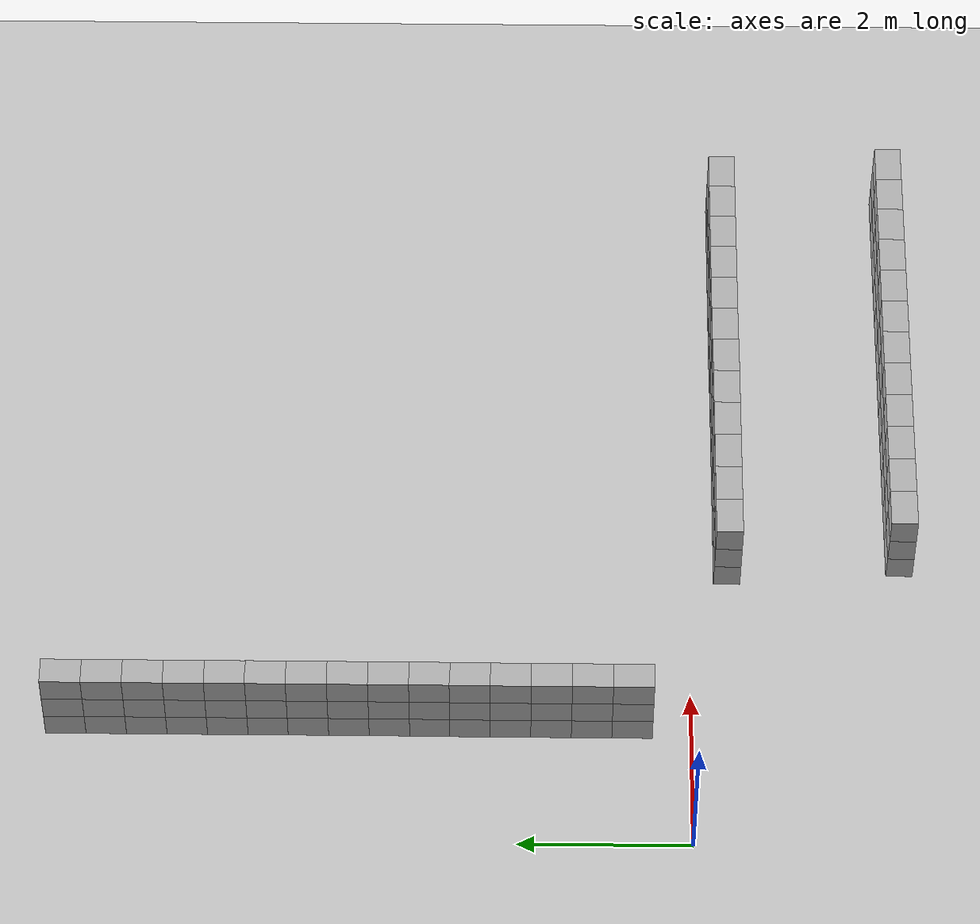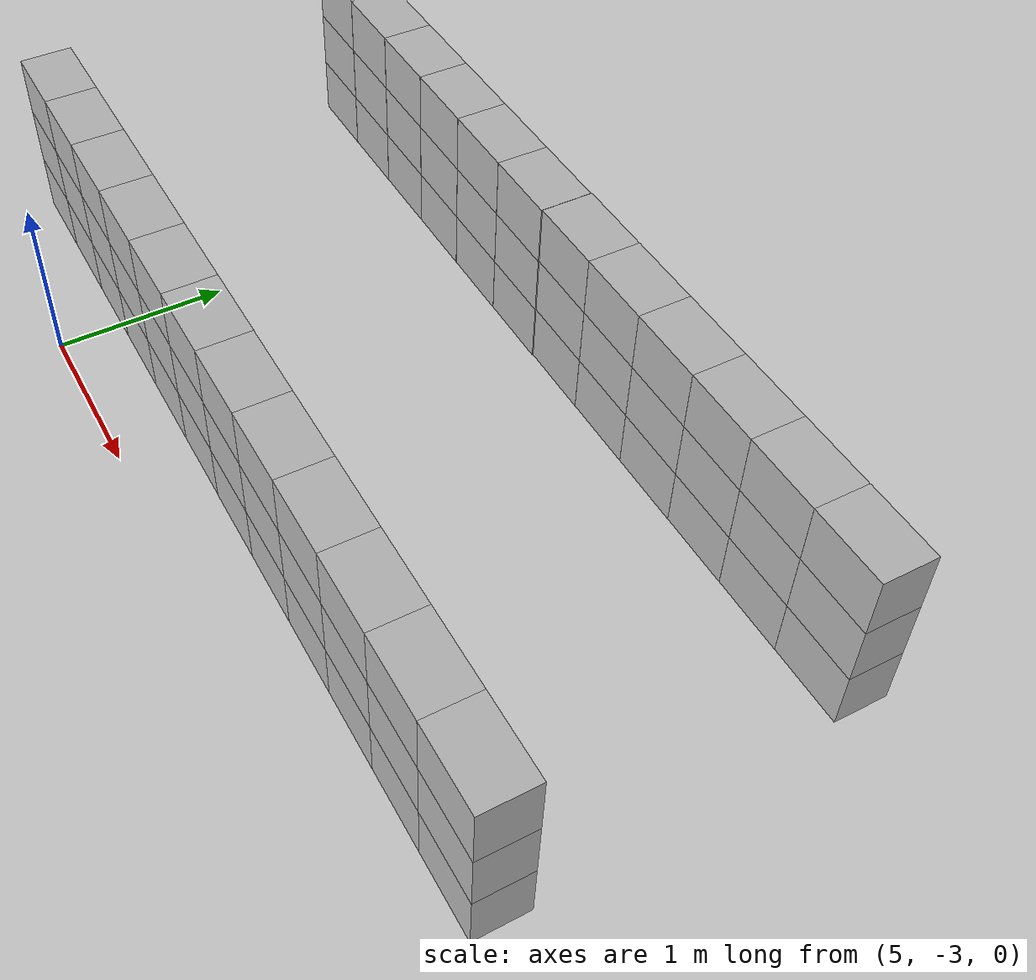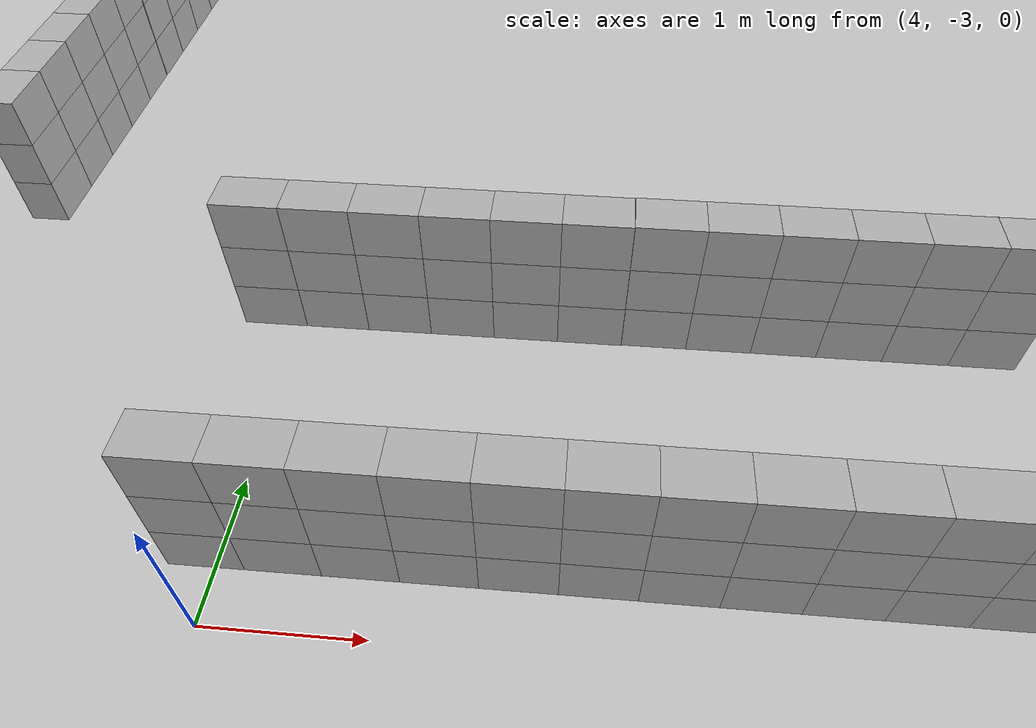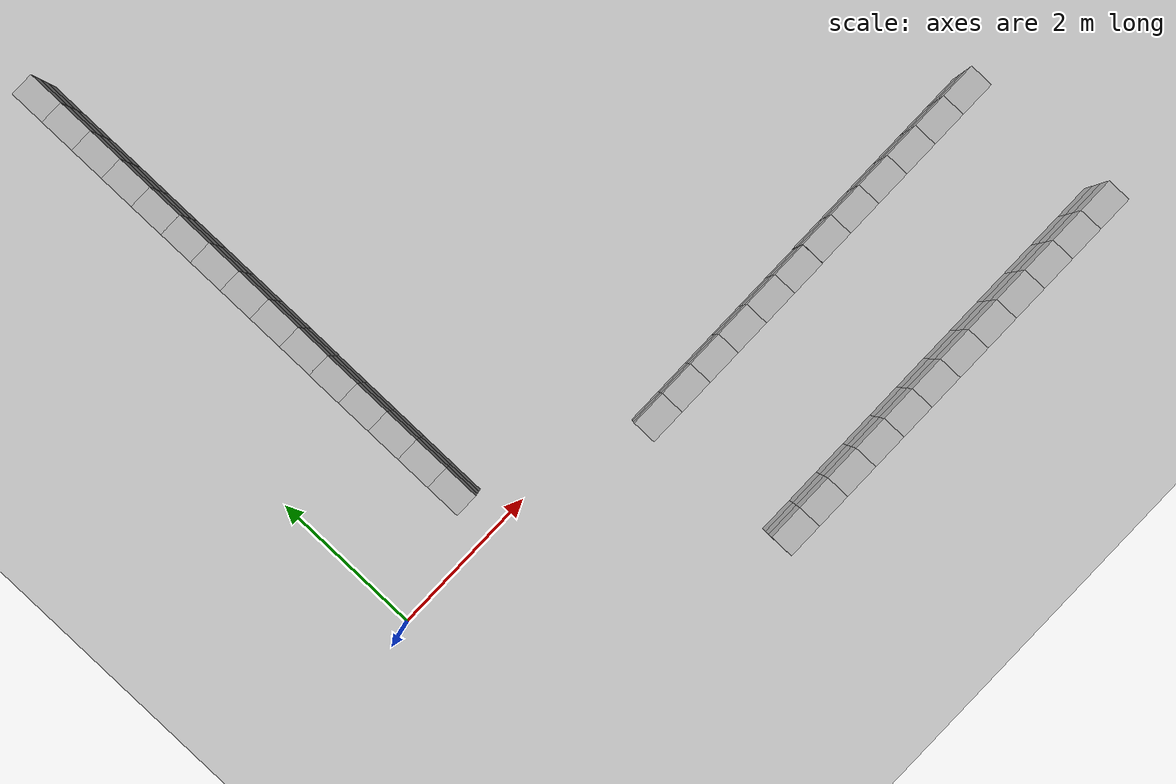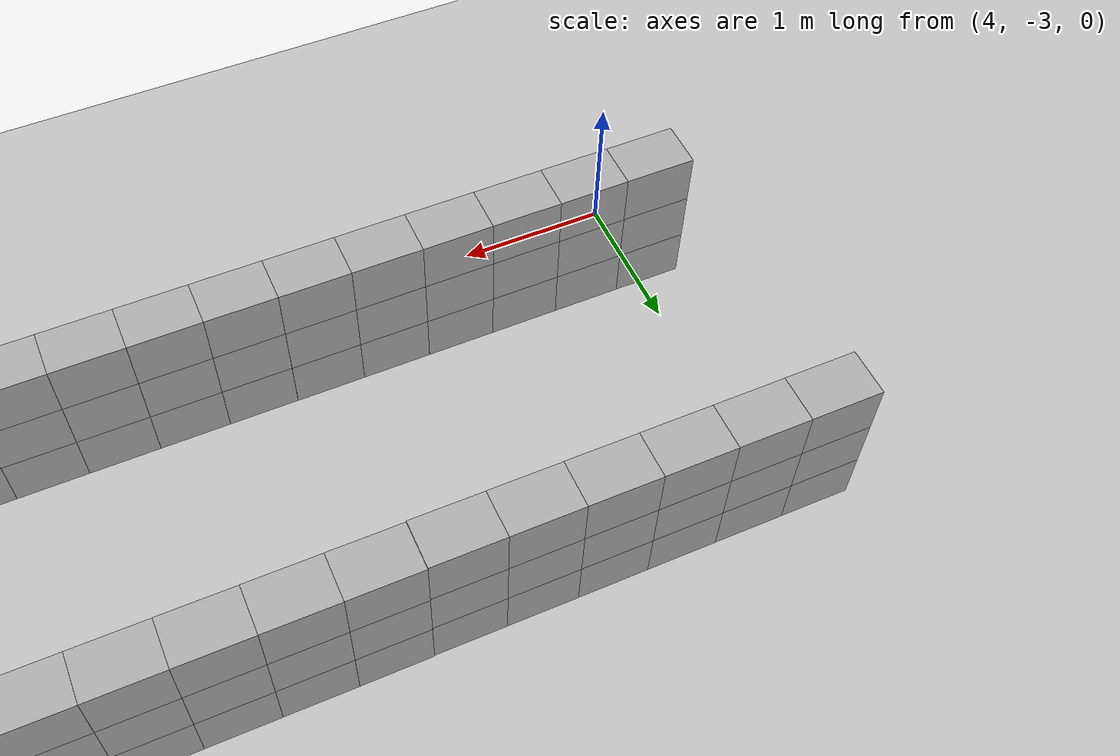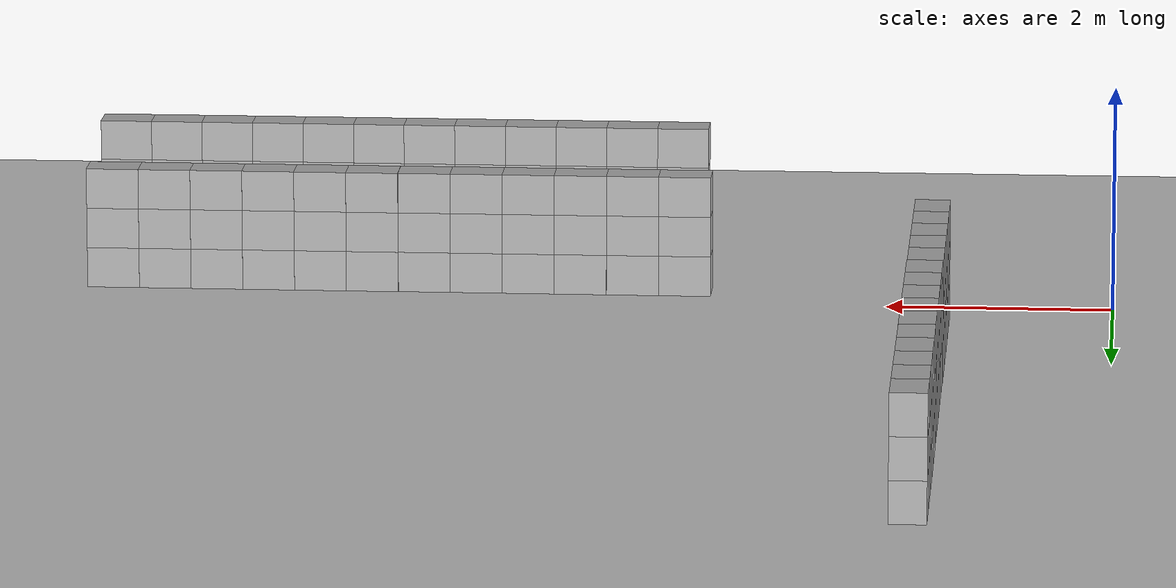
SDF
<sdf version="1.6">
 <world name="default">
  <model name="ground_plane">
   <static>1</static>
   <link name="link">
    <collision name="collision">
     <geometry><plane><normal>0 0 1</normal><size>100 100</size></plane></geometry>
     <surface>
      <contact><collide_bitmask>65535</collide_bitmask></contact>
      <friction><ode><mu>100</mu><mu2>50</mu2></ode></friction>
     </surface>
    </collision>
    <visual name="visual">
     <cast_shadows>0</cast_shadows>
     <geometry><plane><normal>0 0 1</normal><size>100 100</size></plane></geometry>
     <material>
      <script><uri>file://media/materials/scripts/gazebo.material</uri><name>Gazebo/Grey</name></script>
     </material>
    </visual>
   </link>
  </model>
  <model name="realistic_curve_side1_1">
   <pose>6.13372 -0.444168 0 0 -0 1.5708</pose>
   <static>1</static>
   <link name="link_0">
    <collision name="collision_0">
     <pose>0 0 0.18 0 -0 3.14</pose>
     <geometry><box><size>0.31 0.465 0.36</size></box></geometry>
    </collision>
    <visual name="visual_0">
     <pose>0 0 0.18 0 -0 3.14</pose>
     <geometry><mesh><uri>model://L-corridor_curve_real/meshes/exact_blue_circle_border.dae</uri></mesh></geometry>
    </visual>
   </link>
   <link name="link_1">
    <collision name="collision_1">
     <pose>0 0 0.54 0 -0 3.14</pose>
     <geometry><box><size>0.31 0.465 0.36</size></box></geometry>
    </collision>
    <visual name="visual_1">
     <pose>0 0 0.54 0 -0 3.14</pose>
     <geometry><mesh><uri>model://L-corridor_curve_real/meshes/exact_red_circle_border.dae</uri></mesh></geometry>
    </visual>
   </link>
   <link name="link_2">
    <collision name="collision_2">
     <pose>0 0 0.9 0 -0 3.14</pose>
     <geometry><box><size>0.31 0.465 0.36</size></box></geometry>
    </collision>
    <visual name="visual_2">
     <pose>0 0 0.9 0 -0 3.14</pose>
     <geometry>
      <mesh><uri>model://L-corridor_curve_real/meshes/exact_green_circle_border.dae</uri></mesh>
     </geometry>
    </visual>
   </link>
   <link name="link_3">
    <collision name="collision_3">
     <pose>0 0.465 0.54 0 -0 3.14</pose>
     <geometry><box><size>0.31 0.465 0.36</size></box></geometry>
    </collision>
    <visual name="visual_3">
     <pose>0 0.465 0.54 0 -0 3.14</pose>
     <geometry><mesh><uri>model://L-corridor_curve_real/meshes/exact_blue_circle_border.dae</uri></mesh></geometry>
    </visual>
   </link>
   <link name="link_4">
    <collision name="collision_4">
     <pose>0 0.465 0.9 0 -0 3.14</pose>
     <geometry><box><size>0.31 0.465 0.36</size></box></geometry>
    </collision>
    <visual name="visual_4">
     <pose>0 0.465 0.9 0 -0 3.14</pose>
     <geometry><mesh><uri>model://L-corridor_curve_real/meshes/exact_red_circle_border.dae</uri></mesh></geometry>
    </visual>
   </link>
   <link name="link_5">
    <collision name="collision_5">
     <pose>0 0.465 0.18 0 -0 3.14</pose>
     <geometry><box><size>0.31 0.465 0.36</size></box></geometry>
    </collision>
    <visual name="visual_5">
     <pose>0 0.465 0.18 0 -0 3.14</pose>
     <geometry>
      <mesh><uri>model://L-corridor_curve_real/meshes/exact_green_circle_border.dae</uri></mesh>
     </geometry>
    </visual>
   </link>
   <link name="link_6">
    <collision name="collision_6">
     <pose>0 0.93 0.9 0 -0 3.14</pose>
     <geometry><box><size>0.31 0.465 0.36</size></box></geometry>
    </collision>
    <visual name="visual_6">
     <pose>0 0.93 0.9 0 -0 3.14</pose>
     <geometry><mesh><uri>model://L-corridor_curve_real/meshes/exact_blue_circle_border.dae</uri></mesh></geometry>
    </visual>
   </link>
   <link name="link_7">
    <collision name="collision_7">
     <pose>0 0.93 0.18 0 -0 3.14</pose>
     <geometry><box><size>0.31 0.465 0.36</size></box></geometry>
    </collision>
    <visual name="visual_7">
     <pose>0 0.93 0.18 0 -0 3.14</pose>
     <geometry><mesh><uri>model://L-corridor_curve_real/meshes/exact_red_circle_border.dae</uri></mesh></geometry>
    </visual>
   </link>
   <link name="link_8">
    <collision name="collision_8">
     <pose>0 0.93 0.54 0 -0 3.14</pose>
     <geometry><box><size>0.31 0.465 0.36</size></box></geometry>
    </collision>
    <visual name="visual_8">
     <pose>0 0.93 0.54 0 -0 3.14</pose>
     <geometry>
      <mesh><uri>model://L-corridor_curve_real/meshes/exact_green_circle_border.dae</uri></mesh>
     </geometry>
    </visual>
   </link>
   <link name="link_9">
    <collision name="collision_9">
     <pose>0 1.395 0.18 0 -0 3.14</pose>
     <geometry><box><size>0.31 0.465 0.36</size></box></geometry>
    </collision>
    <visual name="visual_9">
     <pose>0 1.395 0.18 0 -0 3.14</pose>
     <geometry><mesh><uri>model://L-corridor_curve_real/meshes/exact_blue_circle_border.dae</uri></mesh></geometry>
    </visual>
   </link>
   <link name="link_10">
    <collision name="collision_10">
     <pose>0 1.395 0.54 0 -0 3.14</pose>
     <geometry><box><size>0.31 0.465 0.36</size></box></geometry>
    </collision>
    <visual name="visual_10">
     <pose>0 1.395 0.54 0 -0 3.14</pose>
     <geometry><mesh><uri>model://L-corridor_curve_real/meshes/exact_red_circle_border.dae</uri></mesh></geometry>
    </visual>
   </link>
   <link name="link_11">
    <collision name="collision_11">
     <pose>0 1.395 0.9 0 -0 3.14</pose>
     <geometry><box><size>0.31 0.465 0.36</size></box></geometry>
    </collision>
    <visual name="visual_11">
     <pose>0 1.395 0.9 0 -0 3.14</pose>
     <geometry>
      <mesh><uri>model://L-corridor_curve_real/meshes/exact_green_circle_border.dae</uri></mesh>
     </geometry>
    </visual>
   </link>
   <link name="link_12">
    <collision name="collision_12">
     <pose>0 1.86 0.54 0 -0 3.14</pose>
     <geometry><box><size>0.31 0.465 0.36</size></box></geometry>
    </collision>
    <visual name="visual_12">
     <pose>0 1.86 0.54 0 -0 3.14</pose>
     <geometry><mesh><uri>model://L-corridor_curve_real/meshes/exact_blue_circle_border.dae</uri></mesh></geometry>
    </visual>
   </link>
   <link name="link_13">
    <collision name="collision_13">
     <pose>0 1.86 0.9 0 -0 3.14</pose>
     <geometry><box><size>0.31 0.465 0.36</size></box></geometry>
    </collision>
    <visual name="visual_13">
     <pose>0 1.86 0.9 0 -0 3.14</pose>
     <geometry><mesh><uri>model://L-corridor_curve_real/meshes/exact_red_circle_border.dae</uri></mesh></geometry>
    </visual>
   </link>
   <link name="link_14">
    <collision name="collision_14">
     <pose>0 1.86 0.18 0 -0 3.14</pose>
     <geometry><box><size>0.31 0.465 0.36</size></box></geometry>
    </collision>
    <visual name="visual_14">
     <pose>0 1.86 0.18 0 -0 3.14</pose>
     <geometry>
      <mesh><uri>model://L-corridor_curve_real/meshes/exact_green_circle_border.dae</uri></mesh>
     </geometry>
    </visual>
   </link>
   <link name="link_15">
    <collision name="collision_15">
     <pose>0 2.325 0 3.14159 0.001593 3.14159</pose>
     <geometry><box><size>0.31 0.465 0.36</size></box></geometry>
    </collision>
    <visual name="visual_15">
     <pose>0 2.325 0.9 0 -0 3.14</pose>
     <geometry><mesh><uri>model://L-corridor_curve_real/meshes/exact_blue_circle_border.dae</uri></mesh></geometry>
    </visual>
   </link>
   <link name="link_16">
    <collision name="collision_16">
     <pose>0 2.325 0.18 0 -0 3.14</pose>
     <geometry><box><size>0.31 0.465 0.36</size></box></geometry>
    </collision>
    <visual name="visual_16">
     <pose>0 2.325 0.18 0 -0 3.14</pose>
     <geometry><mesh><uri>model://L-corridor_curve_real/meshes/exact_red_circle_border.dae</uri></mesh></geometry>
    </visual>
   </link>
   <link name="link_17">
    <collision name="collision_17">
     <pose>0 2.325 0.54 0 -0 3.14</pose>
     <geometry><box><size>0.31 0.465 0.36</size></box></geometry>
    </collision>
    <visual name="visual_17">
     <pose>0 2.325 0.54 0 -0 3.14</pose>
     <geometry>
      <mesh><uri>model://L-corridor_curve_real/meshes/exact_green_circle_border.dae</uri></mesh>
     </geometry>
    </visual>
   </link>
  </model>
  <model name="realistic_curve_side1_1_0">
   <pose>8.92526 -0.439347 0 0 -0 1.5708</pose>
   <static>1</static>
   <link name="link_0">
    <collision name="collision_0">
     <pose>0 0 0.18 0 -0 3.14</pose>
     <geometry><box><size>0.31 0.465 0.36</size></box></geometry>
    </collision>
    <visual name="visual_0">
     <pose>0 0 0.18 0 -0 3.14</pose>
     <geometry><mesh><uri>model://L-corridor_curve_real/meshes/exact_blue_circle_border.dae</uri></mesh></geometry>
    </visual>
   </link>
   <link name="link_1">
    <collision name="collision_1">
     <pose>0 0 0.54 0 -0 3.14</pose>
     <geometry><box><size>0.31 0.465 0.36</size></box></geometry>
    </collision>
    <visual name="visual_1">
     <pose>0 0 0.54 0 -0 3.14</pose>
     <geometry><mesh><uri>model://L-corridor_curve_real/meshes/exact_red_circle_border.dae</uri></mesh></geometry>
    </visual>
   </link>
   <link name="link_2">
    <collision name="collision_2">
     <pose>0 0 0.9 0 -0 3.14</pose>
     <geometry><box><size>0.31 0.465 0.36</size></box></geometry>
    </collision>
    <visual name="visual_2">
     <pose>0 0 0.9 0 -0 3.14</pose>
     <geometry>
      <mesh><uri>model://L-corridor_curve_real/meshes/exact_green_circle_border.dae</uri></mesh>
     </geometry>
    </visual>
   </link>
   <link name="link_3">
    <collision name="collision_3">
     <pose>0 0.465 0.54 0 -0 3.14</pose>
     <geometry><box><size>0.31 0.465 0.36</size></box></geometry>
    </collision>
    <visual name="visual_3">
     <pose>0 0.465 0.54 0 -0 3.14</pose>
     <geometry><mesh><uri>model://L-corridor_curve_real/meshes/exact_blue_circle_border.dae</uri></mesh></geometry>
    </visual>
   </link>
   <link name="link_4">
    <collision name="collision_4">
     <pose>0 0.465 0.9 0 -0 3.14</pose>
     <geometry><box><size>0.31 0.465 0.36</size></box></geometry>
    </collision>
    <visual name="visual_4">
     <pose>0 0.465 0.9 0 -0 3.14</pose>
     <geometry><mesh><uri>model://L-corridor_curve_real/meshes/exact_red_circle_border.dae</uri></mesh></geometry>
    </visual>
   </link>
   <link name="link_5">
    <collision name="collision_5">
     <pose>0 0.465 0.18 0 -0 3.14</pose>
     <geometry><box><size>0.31 0.465 0.36</size></box></geometry>
    </collision>
    <visual name="visual_5">
     <pose>0 0.465 0.18 0 -0 3.14</pose>
     <geometry>
      <mesh><uri>model://L-corridor_curve_real/meshes/exact_green_circle_border.dae</uri></mesh>
     </geometry>
    </visual>
   </link>
   <link name="link_6">
    <collision name="collision_6">
     <pose>0 0.93 0.9 0 -0 3.14</pose>
     <geometry><box><size>0.31 0.465 0.36</size></box></geometry>
    </collision>
    <visual name="visual_6">
     <pose>0 0.93 0.9 0 -0 3.14</pose>
     <geometry><mesh><uri>model://L-corridor_curve_real/meshes/exact_blue_circle_border.dae</uri></mesh></geometry>
    </visual>
   </link>
   <link name="link_7">
    <collision name="collision_7">
     <pose>0 0.93 0.18 0 -0 3.14</pose>
     <geometry><box><size>0.31 0.465 0.36</size></box></geometry>
    </collision>
    <visual name="visual_7">
     <pose>0 0.93 0.18 0 -0 3.14</pose>
     <geometry><mesh><uri>model://L-corridor_curve_real/meshes/exact_red_circle_border.dae</uri></mesh></geometry>
    </visual>
   </link>
   <link name="link_8">
    <collision name="collision_8">
     <pose>0 0.93 0.54 0 -0 3.14</pose>
     <geometry><box><size>0.31 0.465 0.36</size></box></geometry>
    </collision>
    <visual name="visual_8">
     <pose>0 0.93 0.54 0 -0 3.14</pose>
     <geometry>
      <mesh><uri>model://L-corridor_curve_real/meshes/exact_green_circle_border.dae</uri></mesh>
     </geometry>
    </visual>
   </link>
   <link name="link_9">
    <collision name="collision_9">
     <pose>0 1.395 0.18 0 -0 3.14</pose>
     <geometry><box><size>0.31 0.465 0.36</size></box></geometry>
    </collision>
    <visual name="visual_9">
     <pose>0 1.395 0.18 0 -0 3.14</pose>
     <geometry><mesh><uri>model://L-corridor_curve_real/meshes/exact_blue_circle_border.dae</uri></mesh></geometry>
    </visual>
   </link>
   <link name="link_10">
    <collision name="collision_10">
     <pose>0 1.395 0.54 0 -0 3.14</pose>
     <geometry><box><size>0.31 0.465 0.36</size></box></geometry>
    </collision>
    <visual name="visual_10">
     <pose>0 1.395 0.54 0 -0 3.14</pose>
     <geometry><mesh><uri>model://L-corridor_curve_real/meshes/exact_red_circle_border.dae</uri></mesh></geometry>
    </visual>
   </link>
   <link name="link_11">
    <collision name="collision_11">
     <pose>0 1.395 0.9 0 -0 3.14</pose>
     <geometry><box><size>0.31 0.465 0.36</size></box></geometry>
    </collision>
    <visual name="visual_11">
     <pose>0 1.395 0.9 0 -0 3.14</pose>
     <geometry>
      <mesh><uri>model://L-corridor_curve_real/meshes/exact_green_circle_border.dae</uri></mesh>
     </geometry>
    </visual>
   </link>
   <link name="link_12">
    <collision name="collision_12">
     <pose>0 1.86 0.54 0 -0 3.14</pose>
     <geometry><box><size>0.31 0.465 0.36</size></box></geometry>
    </collision>
    <visual name="visual_12">
     <pose>0 1.86 0.54 0 -0 3.14</pose>
     <geometry><mesh><uri>model://L-corridor_curve_real/meshes/exact_blue_circle_border.dae</uri></mesh></geometry>
    </visual>
   </link>
   <link name="link_13">
    <collision name="collision_13">
     <pose>0 1.86 0.9 0 -0 3.14</pose>
     <geometry><box><size>0.31 0.465 0.36</size></box></geometry>
    </collision>
    <visual name="visual_13">
     <pose>0 1.86 0.9 0 -0 3.14</pose>
     <geometry><mesh><uri>model://L-corridor_curve_real/meshes/exact_red_circle_border.dae</uri></mesh></geometry>
    </visual>
   </link>
   <link name="link_14">
    <collision name="collision_14">
     <pose>0 1.86 0.18 0 -0 3.14</pose>
     <geometry><box><size>0.31 0.465 0.36</size></box></geometry>
    </collision>
    <visual name="visual_14">
     <pose>0 1.86 0.18 0 -0 3.14</pose>
     <geometry>
      <mesh><uri>model://L-corridor_curve_real/meshes/exact_green_circle_border.dae</uri></mesh>
     </geometry>
    </visual>
   </link>
   <link name="link_15">
    <collision name="collision_15">
     <pose>0 2.325 0 3.14159 0.001593 3.14159</pose>
     <geometry><box><size>0.31 0.465 0.36</size></box></geometry>
    </collision>
    <visual name="visual_15">
     <pose>0 2.325 0.9 0 -0 3.14</pose>
     <geometry><mesh><uri>model://L-corridor_curve_real/meshes/exact_blue_circle_border.dae</uri></mesh></geometry>
    </visual>
   </link>
   <link name="link_16">
    <collision name="collision_16">
     <pose>0 2.325 0.18 0 -0 3.14</pose>
     <geometry><box><size>0.31 0.465 0.36</size></box></geometry>
    </collision>
    <visual name="visual_16">
     <pose>0 2.325 0.18 0 -0 3.14</pose>
     <geometry><mesh><uri>model://L-corridor_curve_real/meshes/exact_red_circle_border.dae</uri></mesh></geometry>
    </visual>
   </link>
   <link name="link_17">
    <collision name="collision_17">
     <pose>0 2.325 0.54 0 -0 3.14</pose>
     <geometry><box><size>0.31 0.465 0.36</size></box></geometry>
    </collision>
    <visual name="visual_17">
     <pose>0 2.325 0.54 0 -0 3.14</pose>
     <geometry>
      <mesh><uri>model://L-corridor_curve_real/meshes/exact_green_circle_border.dae</uri></mesh>
     </geometry>
    </visual>
   </link>
  </model>
  <model name="realistic_curve_side2_1_0">
   <pose>6.26584 -1.16881 0 0 -0 1.5708</pose>
   <static>1</static>
   <link name="link_0_0">
    <collision name="collision_0_0">
     <pose>-1.3 0 0.18 0 -0 0</pose>
     <geometry><box><size>0.31 0.465 0.36</size></box></geometry>
    </collision>
    <visual name="visual_0_0">
     <pose>-1.3 0 0.18 0 -0 0</pose>
     <geometry><mesh><uri>model://L-corridor_curve_real/meshes/exact_blue_circle_border.dae</uri></mesh></geometry>
    </visual>
   </link>
   <link name="link_1_0">
    <collision name="collision_1_0">
     <pose>-1.3 0.54 0 0 -0 0</pose>
     <geometry><box><size>0.31 0.465 0.36</size></box></geometry>
    </collision>
    <visual name="visual_1_0">
     <pose>-1.3 0 0.54 0 -0 0</pose>
     <geometry><mesh><uri>model://L-corridor_curve_real/meshes/exact_red_circle_border.dae</uri></mesh></geometry>
    </visual>
   </link>
   <link name="link_2_0">
    <collision name="collision_2_0">
     <pose>-1.3 0 0.9 0 -0 0</pose>
     <geometry><box><size>0.31 0.465 0.36</size></box></geometry>
    </collision>
    <visual name="visual_2_0">
     <pose>-1.3 0 0.9 0 -0 0</pose>
     <geometry>
      <mesh><uri>model://L-corridor_curve_real/meshes/exact_green_circle_border.dae</uri></mesh>
     </geometry>
    </visual>
   </link>
   <link name="link_3_0">
    <collision name="collision_3_0">
     <pose>-1.3 0.465 0.54 0 -0 0</pose>
     <geometry><box><size>0.31 0.465 0.36</size></box></geometry>
    </collision>
    <visual name="visual_3_0">
     <pose>-1.3 0.465 0.54 0 -0 0</pose>
     <geometry><mesh><uri>model://L-corridor_curve_real/meshes/exact_blue_circle_border.dae</uri></mesh></geometry>
    </visual>
   </link>
   <link name="link_4_0">
    <collision name="collision_4_0">
     <pose>-1.3 0.465 0.9 0 -0 0</pose>
     <geometry><box><size>0.31 0.465 0.36</size></box></geometry>
    </collision>
    <visual name="visual_4_0">
     <pose>-1.3 0.465 0.9 0 -0 0</pose>
     <geometry><mesh><uri>model://L-corridor_curve_real/meshes/exact_red_circle_border.dae</uri></mesh></geometry>
    </visual>
   </link>
   <link name="link_5_0">
    <collision name="collision_5_0">
     <pose>-1.3 0.465 0.18 0 -0 0</pose>
     <geometry><box><size>0.31 0.465 0.36</size></box></geometry>
    </collision>
    <visual name="visual_5_0">
     <pose>-1.3 0.465 0.18 0 -0 0</pose>
     <geometry>
      <mesh><uri>model://L-corridor_curve_real/meshes/exact_green_circle_border.dae</uri></mesh>
     </geometry>
    </visual>
   </link>
   <link name="link_6_0">
    <collision name="collision_6_0">
     <pose>-1.3 0.93 0.9 0 -0 0</pose>
     <geometry><box><size>0.31 0.465 0.36</size></box></geometry>
    </collision>
    <visual name="visual_6_0">
     <pose>-1.3 0.93 0.9 0 -0 0</pose>
     <geometry><mesh><uri>model://L-corridor_curve_real/meshes/exact_blue_circle_border.dae</uri></mesh></geometry>
    </visual>
   </link>
   <link name="link_7_0">
    <collision name="collision_7_0">
     <pose>-1.3 0.93 0.18 0 -0 0</pose>
     <geometry><box><size>0.31 0.465 0.36</size></box></geometry>
    </collision>
    <visual name="visual_7_0">
     <pose>-1.3 0.93 0.18 0 -0 0</pose>
     <geometry><mesh><uri>model://L-corridor_curve_real/meshes/exact_red_circle_border.dae</uri></mesh></geometry>
    </visual>
   </link>
   <link name="link_8_0">
    <collision name="collision_8_0">
     <pose>-1.3 0.93 0.54 0 -0 0</pose>
     <geometry><box><size>0.31 0.465 0.36</size></box></geometry>
    </collision>
    <visual name="visual_8_0">
     <pose>-1.3 0.93 0.54 0 -0 0</pose>
     <geometry>
      <mesh><uri>model://L-corridor_curve_real/meshes/exact_green_circle_border.dae</uri></mesh>
     </geometry>
    </visual>
   </link>
   <link name="link_9_0">
    <collision name="collision_9_0">
     <pose>-1.3 1.395 0.18 0 -0 0</pose>
     <geometry><box><size>0.31 0.465 0.36</size></box></geometry>
    </collision>
    <visual name="visual_9_0">
     <pose>-1.3 1.395 0.18 0 -0 0</pose>
     <geometry><mesh><uri>model://L-corridor_curve_real/meshes/exact_blue_circle_border.dae</uri></mesh></geometry>
    </visual>
   </link>
   <link name="link_10_0">
    <collision name="collision_10_0">
     <pose>-1.3 1.395 0.54 0 -0 0</pose>
     <geometry><box><size>0.31 0.465 0.36</size></box></geometry>
    </collision>
    <visual name="visual_10_0">
     <pose>-1.3 1.395 0.54 0 -0 0</pose>
     <geometry><mesh><uri>model://L-corridor_curve_real/meshes/exact_red_circle_border.dae</uri></mesh></geometry>
    </visual>
   </link>
   <link name="link_11_0">
    <collision name="collision_11_0">
     <pose>-1.3 1.395 0.9 0 -0 0</pose>
     <geometry><box><size>0.31 0.465 0.36</size></box></geometry>
    </collision>
    <visual name="visual_11_0">
     <pose>-1.3 1.395 0.9 0 -0 0</pose>
     <geometry>
      <mesh><uri>model://L-corridor_curve_real/meshes/exact_green_circle_border.dae</uri></mesh>
     </geometry>
    </visual>
   </link>
   <link name="link_12_0">
    <collision name="collision_12_0">
     <pose>-1.3 1.86 0.54 0 -0 0</pose>
     <geometry><box><size>0.31 0.465 0.36</size></box></geometry>
    </collision>
    <visual name="visual_12_0">
     <pose>-1.3 1.86 0.54 0 -0 0</pose>
     <geometry><mesh><uri>model://L-corridor_curve_real/meshes/exact_blue_circle_border.dae</uri></mesh></geometry>
    </visual>
   </link>
   <link name="link_13_0">
    <collision name="collision_13_0">
     <pose>-1.3 1.86 0.9 0 -0 0</pose>
     <geometry><box><size>0.31 0.465 0.36</size></box></geometry>
    </collision>
    <visual name="visual_13_0">
     <pose>-1.3 1.86 0.9 0 -0 0</pose>
     <geometry><mesh><uri>model://L-corridor_curve_real/meshes/exact_red_circle_border.dae</uri></mesh></geometry>
    </visual>
   </link>
   <link name="link_14_0">
    <collision name="collision_14_0">
     <pose>-1.3 1.86 0.18 0 -0 0</pose>
     <geometry><box><size>0.31 0.465 0.36</size></box></geometry>
    </collision>
    <visual name="visual_14_0">
     <pose>-1.3 1.86 0.18 0 -0 0</pose>
     <geometry>
      <mesh><uri>model://L-corridor_curve_real/meshes/exact_green_circle_border.dae</uri></mesh>
     </geometry>
    </visual>
   </link>
   <link name="link_15_0">
    <collision name="collision_15_0">
     <pose>-1.3 2.325 0 0 -0 0</pose>
     <geometry><box><size>0.31 0.465 0.36</size></box></geometry>
    </collision>
    <visual name="visual_15_0">
     <pose>-1.3 2.325 0.9 0 -0 0</pose>
     <geometry><mesh><uri>model://L-corridor_curve_real/meshes/exact_blue_circle_border.dae</uri></mesh></geometry>
    </visual>
   </link>
   <link name="link_16_0">
    <collision name="collision_16_0">
     <pose>-1.3 2.325 0.18 0 -0 0</pose>
     <geometry><box><size>0.31 0.465 0.36</size></box></geometry>
    </collision>
    <visual name="visual_16_0">
     <pose>-1.3 2.325 0.18 0 -0 0</pose>
     <geometry><mesh><uri>model://L-corridor_curve_real/meshes/exact_red_circle_border.dae</uri></mesh></geometry>
    </visual>
   </link>
   <link name="link_17_0">
    <collision name="collision_17_0">
     <pose>-1.3 2.325 0.54 0 -0 0</pose>
     <geometry><box><size>0.31 0.465 0.36</size></box></geometry>
    </collision>
    <visual name="visual_17_0">
     <pose>-1.3 2.325 0.54 0 -0 0</pose>
     <geometry>
      <mesh><uri>model://L-corridor_curve_real/meshes/exact_green_circle_border.dae</uri></mesh>
     </geometry>
    </visual>
   </link>
  </model>
  <model name="realistic_curve_side2_1_1">
   <pose>9.05342 -1.16989 0 0 -0 1.5708</pose>
   <static>1</static>
   <link name="link_0_0">
    <collision name="collision_0_0">
     <pose>-1.3 0 0.18 0 -0 0</pose>
     <geometry><box><size>0.31 0.465 0.36</size></box></geometry>
    </collision>
    <visual name="visual_0_0">
     <pose>-1.3 0 0.18 0 -0 0</pose>
     <geometry><mesh><uri>model://L-corridor_curve_real/meshes/exact_blue_circle_border.dae</uri></mesh></geometry>
    </visual>
   </link>
   <link name="link_1_0">
    <collision name="collision_1_0">
     <pose>-1.3 0.54 0 0 -0 0</pose>
     <geometry><box><size>0.31 0.465 0.36</size></box></geometry>
    </collision>
    <visual name="visual_1_0">
     <pose>-1.3 0 0.54 0 -0 0</pose>
     <geometry><mesh><uri>model://L-corridor_curve_real/meshes/exact_red_circle_border.dae</uri></mesh></geometry>
    </visual>
   </link>
   <link name="link_2_0">
    <collision name="collision_2_0">
     <pose>-1.3 0 0.9 0 -0 0</pose>
     <geometry><box><size>0.31 0.465 0.36</size></box></geometry>
    </collision>
    <visual name="visual_2_0">
     <pose>-1.3 0 0.9 0 -0 0</pose>
     <geometry>
      <mesh><uri>model://L-corridor_curve_real/meshes/exact_green_circle_border.dae</uri></mesh>
     </geometry>
    </visual>
   </link>
   <link name="link_3_0">
    <collision name="collision_3_0">
     <pose>-1.3 0.465 0.54 0 -0 0</pose>
     <geometry><box><size>0.31 0.465 0.36</size></box></geometry>
    </collision>
    <visual name="visual_3_0">
     <pose>-1.3 0.465 0.54 0 -0 0</pose>
     <geometry><mesh><uri>model://L-corridor_curve_real/meshes/exact_blue_circle_border.dae</uri></mesh></geometry>
    </visual>
   </link>
   <link name="link_4_0">
    <collision name="collision_4_0">
     <pose>-1.3 0.465 0.9 0 -0 0</pose>
     <geometry><box><size>0.31 0.465 0.36</size></box></geometry>
    </collision>
    <visual name="visual_4_0">
     <pose>-1.3 0.465 0.9 0 -0 0</pose>
     <geometry><mesh><uri>model://L-corridor_curve_real/meshes/exact_red_circle_border.dae</uri></mesh></geometry>
    </visual>
   </link>
   <link name="link_5_0">
    <collision name="collision_5_0">
     <pose>-1.3 0.465 0.18 0 -0 0</pose>
     <geometry><box><size>0.31 0.465 0.36</size></box></geometry>
    </collision>
    <visual name="visual_5_0">
     <pose>-1.3 0.465 0.18 0 -0 0</pose>
     <geometry>
      <mesh><uri>model://L-corridor_curve_real/meshes/exact_green_circle_border.dae</uri></mesh>
     </geometry>
    </visual>
   </link>
   <link name="link_6_0">
    <collision name="collision_6_0">
     <pose>-1.3 0.93 0.9 0 -0 0</pose>
     <geometry><box><size>0.31 0.465 0.36</size></box></geometry>
    </collision>
    <visual name="visual_6_0">
     <pose>-1.3 0.93 0.9 0 -0 0</pose>
     <geometry><mesh><uri>model://L-corridor_curve_real/meshes/exact_blue_circle_border.dae</uri></mesh></geometry>
    </visual>
   </link>
   <link name="link_7_0">
    <collision name="collision_7_0">
     <pose>-1.3 0.93 0.18 0 -0 0</pose>
     <geometry><box><size>0.31 0.465 0.36</size></box></geometry>
    </collision>
    <visual name="visual_7_0">
     <pose>-1.3 0.93 0.18 0 -0 0</pose>
     <geometry><mesh><uri>model://L-corridor_curve_real/meshes/exact_red_circle_border.dae</uri></mesh></geometry>
    </visual>
   </link>
   <link name="link_8_0">
    <collision name="collision_8_0">
     <pose>-1.3 0.93 0.54 0 -0 0</pose>
     <geometry><box><size>0.31 0.465 0.36</size></box></geometry>
    </collision>
    <visual name="visual_8_0">
     <pose>-1.3 0.93 0.54 0 -0 0</pose>
     <geometry>
      <mesh><uri>model://L-corridor_curve_real/meshes/exact_green_circle_border.dae</uri></mesh>
     </geometry>
    </visual>
   </link>
   <link name="link_9_0">
    <collision name="collision_9_0">
     <pose>-1.3 1.395 0.18 0 -0 0</pose>
     <geometry><box><size>0.31 0.465 0.36</size></box></geometry>
    </collision>
    <visual name="visual_9_0">
     <pose>-1.3 1.395 0.18 0 -0 0</pose>
     <geometry><mesh><uri>model://L-corridor_curve_real/meshes/exact_blue_circle_border.dae</uri></mesh></geometry>
    </visual>
   </link>
   <link name="link_10_0">
    <collision name="collision_10_0">
     <pose>-1.3 1.395 0.54 0 -0 0</pose>
     <geometry><box><size>0.31 0.465 0.36</size></box></geometry>
    </collision>
    <visual name="visual_10_0">
     <pose>-1.3 1.395 0.54 0 -0 0</pose>
     <geometry><mesh><uri>model://L-corridor_curve_real/meshes/exact_red_circle_border.dae</uri></mesh></geometry>
    </visual>
   </link>
   <link name="link_11_0">
    <collision name="collision_11_0">
     <pose>-1.3 1.395 0.9 0 -0 0</pose>
     <geometry><box><size>0.31 0.465 0.36</size></box></geometry>
    </collision>
    <visual name="visual_11_0">
     <pose>-1.3 1.395 0.9 0 -0 0</pose>
     <geometry>
      <mesh><uri>model://L-corridor_curve_real/meshes/exact_green_circle_border.dae</uri></mesh>
     </geometry>
    </visual>
   </link>
   <link name="link_12_0">
    <collision name="collision_12_0">
     <pose>-1.3 1.86 0.54 0 -0 0</pose>
     <geometry><box><size>0.31 0.465 0.36</size></box></geometry>
    </collision>
    <visual name="visual_12_0">
     <pose>-1.3 1.86 0.54 0 -0 0</pose>
     <geometry><mesh><uri>model://L-corridor_curve_real/meshes/exact_blue_circle_border.dae</uri></mesh></geometry>
    </visual>
   </link>
   <link name="link_13_0">
    <collision name="collision_13_0">
     <pose>-1.3 1.86 0.9 0 -0 0</pose>
     <geometry><box><size>0.31 0.465 0.36</size></box></geometry>
    </collision>
    <visual name="visual_13_0">
     <pose>-1.3 1.86 0.9 0 -0 0</pose>
     <geometry><mesh><uri>model://L-corridor_curve_real/meshes/exact_red_circle_border.dae</uri></mesh></geometry>
    </visual>
   </link>
   <link name="link_14_0">
    <collision name="collision_14_0">
     <pose>-1.3 1.86 0.18 0 -0 0</pose>
     <geometry><box><size>0.31 0.465 0.36</size></box></geometry>
    </collision>
    <visual name="visual_14_0">
     <pose>-1.3 1.86 0.18 0 -0 0</pose>
     <geometry>
      <mesh><uri>model://L-corridor_curve_real/meshes/exact_green_circle_border.dae</uri></mesh>
     </geometry>
    </visual>
   </link>
   <link name="link_15_0">
    <collision name="collision_15_0">
     <pose>-1.3 2.325 0 0 -0 0</pose>
     <geometry><box><size>0.31 0.465 0.36</size></box></geometry>
    </collision>
    <visual name="visual_15_0">
     <pose>-1.3 2.325 0.9 0 -0 0</pose>
     <geometry><mesh><uri>model://L-corridor_curve_real/meshes/exact_blue_circle_border.dae</uri></mesh></geometry>
    </visual>
   </link>
   <link name="link_16_0">
    <collision name="collision_16_0">
     <pose>-1.3 2.325 0.18 0 -0 0</pose>
     <geometry><box><size>0.31 0.465 0.36</size></box></geometry>
    </collision>
    <visual name="visual_16_0">
     <pose>-1.3 2.325 0.18 0 -0 0</pose>
     <geometry><mesh><uri>model://L-corridor_curve_real/meshes/exact_red_circle_border.dae</uri></mesh></geometry>
    </visual>
   </link>
   <link name="link_17_0">
    <collision name="collision_17_0">
     <pose>-1.3 2.325 0.54 0 -0 0</pose>
     <geometry><box><size>0.31 0.465 0.36</size></box></geometry>
    </collision>
    <visual name="visual_17_0">
     <pose>-1.3 2.325 0.54 0 -0 0</pose>
     <geometry>
      <mesh><uri>model://L-corridor_curve_real/meshes/exact_green_circle_border.dae</uri></mesh>
     </geometry>
    </visual>
   </link>
  </model>
  <model name="realistic_curve_side1_2">
   <pose>4.73832 4.41954 0 0 -0 1.5708</pose>
   <static>1</static>
   <link name="link_24">
    <collision name="collision_24">
     <pose>0.9 3.15 0.9 3.14159 1.57079 3.14159</pose>
     <geometry><box><size>0.31 0.465 0.36</size></box></geometry>
    </collision>
    <visual name="visual_24">
     <pose>0.9 3.15 0.9 0 -0 1.5708</pose>
     <geometry><mesh><uri>model://L-corridor_curve_real/meshes/exact_blue_circle_border.dae</uri></mesh></geometry>
    </visual>
   </link>
   <link name="link_25">
    <collision name="collision_25">
     <pose>0.9 3.15 0.18 0 -0 1.5708</pose>
     <geometry><box><size>0.31 0.465 0.36</size></box></geometry>
    </collision>
    <visual name="visual_25">
     <pose>0.9 3.15 0.18 0 -0 1.5708</pose>
     <geometry><mesh><uri>model://L-corridor_curve_real/meshes/exact_red_circle_border.dae</uri></mesh></geometry>
    </visual>
   </link>
   <link name="link_26">
    <collision name="collision_26">
     <pose>0.9 3.15 0.54 0 -0 1.5708</pose>
     <geometry><box><size>0.31 0.465 0.36</size></box></geometry>
    </collision>
    <visual name="visual_26">
     <pose>0.9 3.15 0.54 0 -0 1.5708</pose>
     <geometry>
      <mesh><uri>model://L-corridor_curve_real/meshes/exact_green_circle_border.dae</uri></mesh>
     </geometry>
    </visual>
   </link>
   <link name="link_27">
    <collision name="collision_27">
     <pose>1.365 3.15 0.18 0 -0 1.5708</pose>
     <geometry><box><size>0.31 0.465 0.36</size></box></geometry>
    </collision>
    <visual name="visual_27">
     <pose>1.365 3.15 0.18 0 -0 1.5708</pose>
     <geometry><mesh><uri>model://L-corridor_curve_real/meshes/exact_blue_circle_border.dae</uri></mesh></geometry>
    </visual>
   </link>
   <link name="link_28">
    <collision name="collision_28">
     <pose>1.365 3.15 0.54 0 -0 1.5708</pose>
     <geometry><box><size>0.31 0.465 0.36</size></box></geometry>
    </collision>
    <visual name="visual_28">
     <pose>1.365 3.15 0.54 0 -0 1.5708</pose>
     <geometry><mesh><uri>model://L-corridor_curve_real/meshes/exact_red_circle_border.dae</uri></mesh></geometry>
    </visual>
   </link>
   <link name="link_29">
    <collision name="collision_29">
     <pose>1.365 3.15 0.9 0 -0 1.5708</pose>
     <geometry><box><size>0.31 0.465 0.36</size></box></geometry>
    </collision>
    <visual name="visual_29">
     <pose>1.365 3.15 0.9 0 -0 1.5708</pose>
     <geometry>
      <mesh><uri>model://L-corridor_curve_real/meshes/exact_green_circle_border.dae</uri></mesh>
     </geometry>
    </visual>
   </link>
   <link name="link_30">
    <collision name="collision_30">
     <pose>1.83 3.15 0.54 0 -0 1.5708</pose>
     <geometry><box><size>0.31 0.465 0.36</size></box></geometry>
    </collision>
    <visual name="visual_30">
     <pose>1.83 3.15 0.54 0 -0 1.5708</pose>
     <geometry><mesh><uri>model://L-corridor_curve_real/meshes/exact_blue_circle_border.dae</uri></mesh></geometry>
    </visual>
   </link>
   <link name="link_31">
    <collision name="collision_31">
     <pose>1.83 3.15 0.9 0 -0 1.5708</pose>
     <geometry><box><size>0.31 0.465 0.36</size></box></geometry>
    </collision>
    <visual name="visual_31">
     <pose>1.83 3.15 0.9 0 -0 1.5708</pose>
     <geometry><mesh><uri>model://L-corridor_curve_real/meshes/exact_red_circle_border.dae</uri></mesh></geometry>
    </visual>
   </link>
   <link name="link_32">
    <collision name="collision_32">
     <pose>1.83 3.15 0.18 0 -0 1.5708</pose>
     <geometry><box><size>0.31 0.465 0.36</size></box></geometry>
    </collision>
    <visual name="visual_32">
     <pose>1.83 3.15 0.18 0 -0 1.5708</pose>
     <geometry>
      <mesh><uri>model://L-corridor_curve_real/meshes/exact_green_circle_border.dae</uri></mesh>
     </geometry>
    </visual>
   </link>
   <link name="link_33">
    <collision name="collision_33">
     <pose>2.295 3.15 0.9 3.14159 1.57079 3.14159</pose>
     <geometry><box><size>0.31 0.465 0.36</size></box></geometry>
    </collision>
    <visual name="visual_33">
     <pose>2.295 3.15 0.9 0 -0 1.5708</pose>
     <geometry><mesh><uri>model://L-corridor_curve_real/meshes/exact_blue_circle_border.dae</uri></mesh></geometry>
    </visual>
   </link>
   <link name="link_34">
    <collision name="collision_34">
     <pose>2.295 3.15 0.18 0 -0 1.5708</pose>
     <geometry><box><size>0.31 0.465 0.36</size></box></geometry>
    </collision>
    <visual name="visual_34">
     <pose>2.295 3.15 0.18 0 -0 1.5708</pose>
     <geometry><mesh><uri>model://L-corridor_curve_real/meshes/exact_red_circle_border.dae</uri></mesh></geometry>
    </visual>
   </link>
   <link name="link_35">
    <collision name="collision_35">
     <pose>2.295 3.15 0.54 0 -0 1.5708</pose>
     <geometry><box><size>0.31 0.465 0.36</size></box></geometry>
    </collision>
    <visual name="visual_35">
     <pose>2.295 3.15 0.54 0 -0 1.5708</pose>
     <geometry>
      <mesh><uri>model://L-corridor_curve_real/meshes/exact_green_circle_border.dae</uri></mesh>
     </geometry>
    </visual>
   </link>
   <link name="link_36">
    <collision name="collision_36">
     <pose>2.76 3.15 0.18 0 -0 1.5708</pose>
     <geometry><box><size>0.31 0.465 0.36</size></box></geometry>
    </collision>
    <visual name="visual_36">
     <pose>2.76 3.15 0.18 0 -0 1.5708</pose>
     <geometry><mesh><uri>model://L-corridor_curve_real/meshes/exact_blue_circle_border.dae</uri></mesh></geometry>
    </visual>
   </link>
   <link name="link_37">
    <collision name="collision_37">
     <pose>2.76 3.15 0.54 0 -0 1.5708</pose>
     <geometry><box><size>0.31 0.465 0.36</size></box></geometry>
    </collision>
    <visual name="visual_37">
     <pose>2.76 3.15 0.54 0 -0 1.5708</pose>
     <geometry><mesh><uri>model://L-corridor_curve_real/meshes/exact_red_circle_border.dae</uri></mesh></geometry>
    </visual>
   </link>
   <link name="link_38">
    <collision name="collision_38">
     <pose>2.76 3.15 0.9 0 -0 1.5708</pose>
     <geometry><box><size>0.31 0.465 0.36</size></box></geometry>
    </collision>
    <visual name="visual_38">
     <pose>2.76 3.15 0.9 0 -0 1.5708</pose>
     <geometry>
      <mesh><uri>model://L-corridor_curve_real/meshes/exact_green_circle_border.dae</uri></mesh>
     </geometry>
    </visual>
   </link>
  </model>
  <model name="realistic_curve_side1_2_0">
   <pose>4.73984 2.09925 0 0 -0 1.5708</pose>
   <static>1</static>
   <link name="link_24">
    <collision name="collision_24">
     <pose>0.9 3.15 0.9 3.14159 1.57079 3.14159</pose>
     <geometry><box><size>0.31 0.465 0.36</size></box></geometry>
    </collision>
    <visual name="visual_24">
     <pose>0.9 3.15 0.9 0 -0 1.5708</pose>
     <geometry><mesh><uri>model://L-corridor_curve_real/meshes/exact_blue_circle_border.dae</uri></mesh></geometry>
    </visual>
   </link>
   <link name="link_25">
    <collision name="collision_25">
     <pose>0.9 3.15 0.18 0 -0 1.5708</pose>
     <geometry><box><size>0.31 0.465 0.36</size></box></geometry>
    </collision>
    <visual name="visual_25">
     <pose>0.9 3.15 0.18 0 -0 1.5708</pose>
     <geometry><mesh><uri>model://L-corridor_curve_real/meshes/exact_red_circle_border.dae</uri></mesh></geometry>
    </visual>
   </link>
   <link name="link_26">
    <collision name="collision_26">
     <pose>0.9 3.15 0.54 0 -0 1.5708</pose>
     <geometry><box><size>0.31 0.465 0.36</size></box></geometry>
    </collision>
    <visual name="visual_26">
     <pose>0.9 3.15 0.54 0 -0 1.5708</pose>
     <geometry>
      <mesh><uri>model://L-corridor_curve_real/meshes/exact_green_circle_border.dae</uri></mesh>
     </geometry>
    </visual>
   </link>
   <link name="link_27">
    <collision name="collision_27">
     <pose>1.365 3.15 0.18 0 -0 1.5708</pose>
     <geometry><box><size>0.31 0.465 0.36</size></box></geometry>
    </collision>
    <visual name="visual_27">
     <pose>1.365 3.15 0.18 0 -0 1.5708</pose>
     <geometry><mesh><uri>model://L-corridor_curve_real/meshes/exact_blue_circle_border.dae</uri></mesh></geometry>
    </visual>
   </link>
   <link name="link_28">
    <collision name="collision_28">
     <pose>1.365 3.15 0.54 0 -0 1.5708</pose>
     <geometry><box><size>0.31 0.465 0.36</size></box></geometry>
    </collision>
    <visual name="visual_28">
     <pose>1.365 3.15 0.54 0 -0 1.5708</pose>
     <geometry><mesh><uri>model://L-corridor_curve_real/meshes/exact_red_circle_border.dae</uri></mesh></geometry>
    </visual>
   </link>
   <link name="link_29">
    <collision name="collision_29">
     <pose>1.365 3.15 0.9 0 -0 1.5708</pose>
     <geometry><box><size>0.31 0.465 0.36</size></box></geometry>
    </collision>
    <visual name="visual_29">
     <pose>1.365 3.15 0.9 0 -0 1.5708</pose>
     <geometry>
      <mesh><uri>model://L-corridor_curve_real/meshes/exact_green_circle_border.dae</uri></mesh>
     </geometry>
    </visual>
   </link>
   <link name="link_30">
    <collision name="collision_30">
     <pose>1.83 3.15 0.54 0 -0 1.5708</pose>
     <geometry><box><size>0.31 0.465 0.36</size></box></geometry>
    </collision>
    <visual name="visual_30">
     <pose>1.83 3.15 0.54 0 -0 1.5708</pose>
     <geometry><mesh><uri>model://L-corridor_curve_real/meshes/exact_blue_circle_border.dae</uri></mesh></geometry>
    </visual>
   </link>
   <link name="link_31">
    <collision name="collision_31">
     <pose>1.83 3.15 0.9 0 -0 1.5708</pose>
     <geometry><box><size>0.31 0.465 0.36</size></box></geometry>
    </collision>
    <visual name="visual_31">
     <pose>1.83 3.15 0.9 0 -0 1.5708</pose>
     <geometry><mesh><uri>model://L-corridor_curve_real/meshes/exact_red_circle_border.dae</uri></mesh></geometry>
    </visual>
   </link>
   <link name="link_32">
    <collision name="collision_32">
     <pose>1.83 3.15 0.18 0 -0 1.5708</pose>
     <geometry><box><size>0.31 0.465 0.36</size></box></geometry>
    </collision>
    <visual name="visual_32">
     <pose>1.83 3.15 0.18 0 -0 1.5708</pose>
     <geometry>
      <mesh><uri>model://L-corridor_curve_real/meshes/exact_green_circle_border.dae</uri></mesh>
     </geometry>
    </visual>
   </link>
   <link name="link_33">
    <collision name="collision_33">
     <pose>2.295 3.15 0.9 3.14159 1.57079 3.14159</pose>
     <geometry><box><size>0.31 0.465 0.36</size></box></geometry>
    </collision>
    <visual name="visual_33">
     <pose>2.295 3.15 0.9 0 -0 1.5708</pose>
     <geometry><mesh><uri>model://L-corridor_curve_real/meshes/exact_blue_circle_border.dae</uri></mesh></geometry>
    </visual>
   </link>
   <link name="link_34">
    <collision name="collision_34">
     <pose>2.295 3.15 0.18 0 -0 1.5708</pose>
     <geometry><box><size>0.31 0.465 0.36</size></box></geometry>
    </collision>
    <visual name="visual_34">
     <pose>2.295 3.15 0.18 0 -0 1.5708</pose>
     <geometry><mesh><uri>model://L-corridor_curve_real/meshes/exact_red_circle_border.dae</uri></mesh></geometry>
    </visual>
   </link>
   <link name="link_35">
    <collision name="collision_35">
     <pose>2.295 3.15 0.54 0 -0 1.5708</pose>
     <geometry><box><size>0.31 0.465 0.36</size></box></geometry>
    </collision>
    <visual name="visual_35">
     <pose>2.295 3.15 0.54 0 -0 1.5708</pose>
     <geometry>
      <mesh><uri>model://L-corridor_curve_real/meshes/exact_green_circle_border.dae</uri></mesh>
     </geometry>
    </visual>
   </link>
   <link name="link_36">
    <collision name="collision_36">
     <pose>2.76 3.15 0.18 0 -0 1.5708</pose>
     <geometry><box><size>0.31 0.465 0.36</size></box></geometry>
    </collision>
    <visual name="visual_36">
     <pose>2.76 3.15 0.18 0 -0 1.5708</pose>
     <geometry><mesh><uri>model://L-corridor_curve_real/meshes/exact_blue_circle_border.dae</uri></mesh></geometry>
    </visual>
   </link>
   <link name="link_37">
    <collision name="collision_37">
     <pose>2.76 3.15 0.54 0 -0 1.5708</pose>
     <geometry><box><size>0.31 0.465 0.36</size></box></geometry>
    </collision>
    <visual name="visual_37">
     <pose>2.76 3.15 0.54 0 -0 1.5708</pose>
     <geometry><mesh><uri>model://L-corridor_curve_real/meshes/exact_red_circle_border.dae</uri></mesh></geometry>
    </visual>
   </link>
   <link name="link_38">
    <collision name="collision_38">
     <pose>2.76 3.15 0.9 0 -0 1.5708</pose>
     <geometry><box><size>0.31 0.465 0.36</size></box></geometry>
    </collision>
    <visual name="visual_38">
     <pose>2.76 3.15 0.9 0 -0 1.5708</pose>
     <geometry>
      <mesh><uri>model://L-corridor_curve_real/meshes/exact_green_circle_border.dae</uri></mesh>
     </geometry>
    </visual>
   </link>
  </model>
  <model name="realistic_curve_side1_2_1">
   <pose>4.73615 -0.21927 0 0 -0 1.5708</pose>
   <static>1</static>
   <link name="link_24">
    <collision name="collision_24">
     <pose>0.9 3.15 0.9 3.14159 1.57079 3.14159</pose>
     <geometry><box><size>0.31 0.465 0.36</size></box></geometry>
    </collision>
    <visual name="visual_24">
     <pose>0.9 3.15 0.9 0 -0 1.5708</pose>
     <geometry><mesh><uri>model://L-corridor_curve_real/meshes/exact_blue_circle_border.dae</uri></mesh></geometry>
    </visual>
   </link>
   <link name="link_25">
    <collision name="collision_25">
     <pose>0.9 3.15 0.18 0 -0 1.5708</pose>
     <geometry><box><size>0.31 0.465 0.36</size></box></geometry>
    </collision>
    <visual name="visual_25">
     <pose>0.9 3.15 0.18 0 -0 1.5708</pose>
     <geometry><mesh><uri>model://L-corridor_curve_real/meshes/exact_red_circle_border.dae</uri></mesh></geometry>
    </visual>
   </link>
   <link name="link_26">
    <collision name="collision_26">
     <pose>0.9 3.15 0.54 0 -0 1.5708</pose>
     <geometry><box><size>0.31 0.465 0.36</size></box></geometry>
    </collision>
    <visual name="visual_26">
     <pose>0.9 3.15 0.54 0 -0 1.5708</pose>
     <geometry>
      <mesh><uri>model://L-corridor_curve_real/meshes/exact_green_circle_border.dae</uri></mesh>
     </geometry>
    </visual>
   </link>
   <link name="link_27">
    <collision name="collision_27">
     <pose>1.365 3.15 0.18 0 -0 1.5708</pose>
     <geometry><box><size>0.31 0.465 0.36</size></box></geometry>
    </collision>
    <visual name="visual_27">
     <pose>1.365 3.15 0.18 0 -0 1.5708</pose>
     <geometry><mesh><uri>model://L-corridor_curve_real/meshes/exact_blue_circle_border.dae</uri></mesh></geometry>
    </visual>
   </link>
   <link name="link_28">
    <collision name="collision_28">
     <pose>1.365 3.15 0.54 0 -0 1.5708</pose>
     <geometry><box><size>0.31 0.465 0.36</size></box></geometry>
    </collision>
    <visual name="visual_28">
     <pose>1.365 3.15 0.54 0 -0 1.5708</pose>
     <geometry><mesh><uri>model://L-corridor_curve_real/meshes/exact_red_circle_border.dae</uri></mesh></geometry>
    </visual>
   </link>
   <link name="link_29">
    <collision name="collision_29">
     <pose>1.365 3.15 0.9 0 -0 1.5708</pose>
     <geometry><box><size>0.31 0.465 0.36</size></box></geometry>
    </collision>
    <visual name="visual_29">
     <pose>1.365 3.15 0.9 0 -0 1.5708</pose>
     <geometry>
      <mesh><uri>model://L-corridor_curve_real/meshes/exact_green_circle_border.dae</uri></mesh>
     </geometry>
    </visual>
   </link>
   <link name="link_30">
    <collision name="collision_30">
     <pose>1.83 3.15 0.54 0 -0 1.5708</pose>
     <geometry><box><size>0.31 0.465 0.36</size></box></geometry>
    </collision>
    <visual name="visual_30">
     <pose>1.83 3.15 0.54 0 -0 1.5708</pose>
     <geometry><mesh><uri>model://L-corridor_curve_real/meshes/exact_blue_circle_border.dae</uri></mesh></geometry>
    </visual>
   </link>
   <link name="link_31">
    <collision name="collision_31">
     <pose>1.83 3.15 0.9 0 -0 1.5708</pose>
     <geometry><box><size>0.31 0.465 0.36</size></box></geometry>
    </collision>
    <visual name="visual_31">
     <pose>1.83 3.15 0.9 0 -0 1.5708</pose>
     <geometry><mesh><uri>model://L-corridor_curve_real/meshes/exact_red_circle_border.dae</uri></mesh></geometry>
    </visual>
   </link>
   <link name="link_32">
    <collision name="collision_32">
     <pose>1.83 3.15 0.18 0 -0 1.5708</pose>
     <geometry><box><size>0.31 0.465 0.36</size></box></geometry>
    </collision>
    <visual name="visual_32">
     <pose>1.83 3.15 0.18 0 -0 1.5708</pose>
     <geometry>
      <mesh><uri>model://L-corridor_curve_real/meshes/exact_green_circle_border.dae</uri></mesh>
     </geometry>
    </visual>
   </link>
   <link name="link_33">
    <collision name="collision_33">
     <pose>2.295 3.15 0.9 3.14159 1.57079 3.14159</pose>
     <geometry><box><size>0.31 0.465 0.36</size></box></geometry>
    </collision>
    <visual name="visual_33">
     <pose>2.295 3.15 0.9 0 -0 1.5708</pose>
     <geometry><mesh><uri>model://L-corridor_curve_real/meshes/exact_blue_circle_border.dae</uri></mesh></geometry>
    </visual>
   </link>
   <link name="link_34">
    <collision name="collision_34">
     <pose>2.295 3.15 0.18 0 -0 1.5708</pose>
     <geometry><box><size>0.31 0.465 0.36</size></box></geometry>
    </collision>
    <visual name="visual_34">
     <pose>2.295 3.15 0.18 0 -0 1.5708</pose>
     <geometry><mesh><uri>model://L-corridor_curve_real/meshes/exact_red_circle_border.dae</uri></mesh></geometry>
    </visual>
   </link>
   <link name="link_35">
    <collision name="collision_35">
     <pose>2.295 3.15 0.54 0 -0 1.5708</pose>
     <geometry><box><size>0.31 0.465 0.36</size></box></geometry>
    </collision>
    <visual name="visual_35">
     <pose>2.295 3.15 0.54 0 -0 1.5708</pose>
     <geometry>
      <mesh><uri>model://L-corridor_curve_real/meshes/exact_green_circle_border.dae</uri></mesh>
     </geometry>
    </visual>
   </link>
   <link name="link_36">
    <collision name="collision_36">
     <pose>2.76 3.15 0.18 0 -0 1.5708</pose>
     <geometry><box><size>0.31 0.465 0.36</size></box></geometry>
    </collision>
    <visual name="visual_36">
     <pose>2.76 3.15 0.18 0 -0 1.5708</pose>
     <geometry><mesh><uri>model://L-corridor_curve_real/meshes/exact_blue_circle_border.dae</uri></mesh></geometry>
    </visual>
   </link>
   <link name="link_37">
    <collision name="collision_37">
     <pose>2.76 3.15 0.54 0 -0 1.5708</pose>
     <geometry><box><size>0.31 0.465 0.36</size></box></geometry>
    </collision>
    <visual name="visual_37">
     <pose>2.76 3.15 0.54 0 -0 1.5708</pose>
     <geometry><mesh><uri>model://L-corridor_curve_real/meshes/exact_red_circle_border.dae</uri></mesh></geometry>
    </visual>
   </link>
   <link name="link_38">
    <collision name="collision_38">
     <pose>2.76 3.15 0.9 0 -0 1.5708</pose>
     <geometry><box><size>0.31 0.465 0.36</size></box></geometry>
    </collision>
    <visual name="visual_38">
     <pose>2.76 3.15 0.9 0 -0 1.5708</pose>
     <geometry>
      <mesh><uri>model://L-corridor_curve_real/meshes/exact_green_circle_border.dae</uri></mesh>
     </geometry>
    </visual>
   </link>
  </model>
 </world>
</sdf>
